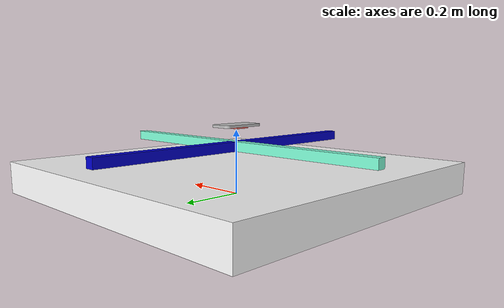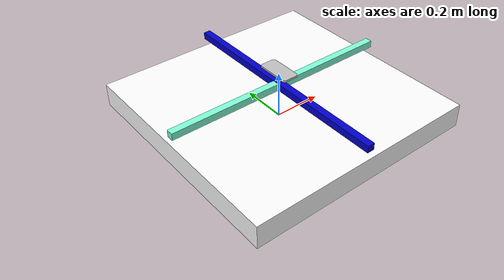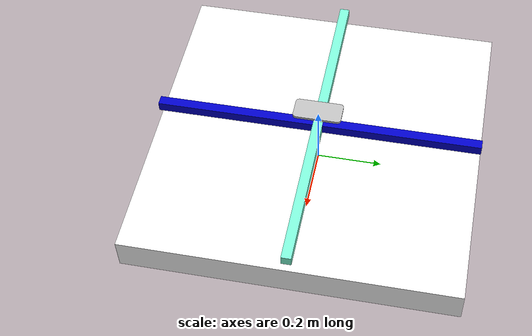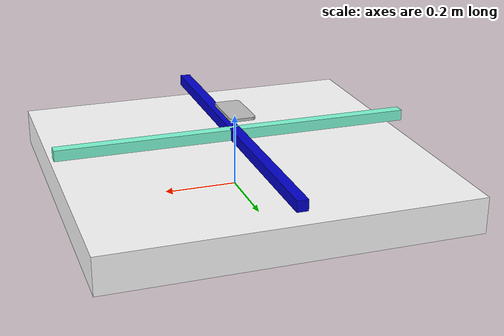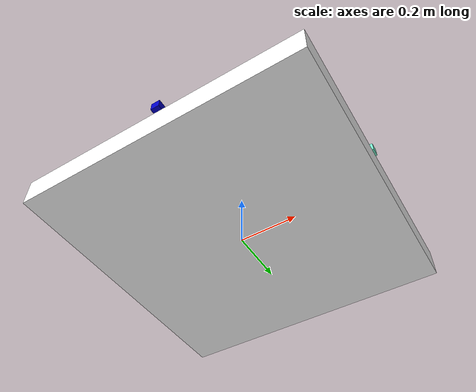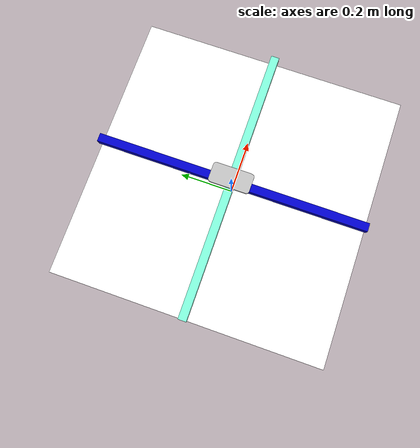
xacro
<?xml version="1.0"?>
<robot xmlns:xacro="http://www.ros.org/wiki/xacro" name="machine_tool" >
    <xacro:include filename="$(find machine_tool_description)/urdf/xacro/common.gazebo.xacro" />

    <material name="Aquamarine1"><color rgba="0.5 1 0.85 1"/></material>
    <material name="white"><color rgba="1 1 1 1"/></material>
    <material name="MediumBlue"><color rgba="0 0 0.8 1"/></material>
    <material name="Tomato"><color rgba="1 0.4 0.36 1"/></material>
    <link name="world"/>

    <link name="base_table">
        <visual>
            <origin xyz="0 0 0" rpy="0 0 0" />
            <geometry>
                <box size="1.0 1.0 0.1" />
            </geometry>
            <material name="white"/>
        </visual>
        <collision>
            <origin xyz="0 0 0" rpy="0 0 0" />
            <geometry>
                <box size="1.0 1.0 0.1" />
            </geometry>
        </collision>
        <inertial>
            <origin xyz="0 0 0" rpy="0 0 0" />
            <mass value="100"/>
            <inertia
                ixx="8.5" ixy="0.0" ixz="0.0"
                iyy="8.5" iyz="0.0"
                izz="17"/>
        </inertial>
        <surface>
            <friction>
                <ode>
                <mu>100</mu>
                <mu2>100</mu2>
                </ode>
            </friction>
        </surface>
    </link>

    <joint name="fixed" type="fixed">
        <origin xyz="0 0 0.05" rpy="0 0 0" />
        <parent link="world"/>
        <child link="base_table"/>
    </joint>

    <link name="x_axle">
        <visual>
            <origin xyz="0 0 0" rpy="0 0 0" />
            <geometry>
                <box size="1.0 0.03 0.03" />
            </geometry>
            <material name="Aquamarine1"/>
        </visual>
        <collision>
            <origin xyz="0 0 0" rpy="0 0 0" />
            <geometry>
                <box size="1.0 0.03 0.03" />
            </geometry>
        </collision>
        <inertial>
            <origin xyz="0 0 0" rpy="0 0 0" />
            <mass value="10"/>
            <inertia
                ixx="0.02" ixy="0.0" ixz="0.0"
                iyy="0.85" iyz="0.0"
                izz="0.85"/>
        </inertial>
        <surface>
            <friction>
                <ode>
                <mu>100</mu>
                <mu2>100</mu2>
                </ode>
            </friction>
        </surface>
    </link>

    <joint name="x_joint" type="prismatic">
       <origin xyz="0 0 0.1" rpy="0 0 0"></origin>
        <parent link="base_table" />
        <child link="x_axle"/>
        <axis xyz="1 0 0" />
        <limit effort="30" velocity="100.0" lower="-0.5" upper="0.5" />
    </joint>

    <link name="y_axle">
        <visual>
            <origin xyz="0 0 0" rpy="0 0 0" />
            <geometry>
                <box size="0.03 1.0 0.03" />
            </geometry>
            <material name="MediumBlue"/>
        </visual>
        <collision>
            <origin xyz="0 0 0" rpy="0 0 0" />
            <geometry>
                <box size="0.03 1.0 0.03" />
            </geometry>
        </collision>
        <inertial>
            <origin xyz="0 0 0" rpy="0 0 0" />
            <mass value="10"/>
            <inertia
                ixx="0.85" ixy="0.0" ixz="0.0"
                iyy="0.02" iyz="0.0"
                izz="0.85"/>
        </inertial>
        <surface>
            <friction>
                <ode>
                <mu>100</mu>
                <mu2>100</mu2>
                </ode>
            </friction>
        </surface>
    </link>

    <joint name="y_joint" type="prismatic">
       <origin xyz="0 0 0" rpy="0 0 0"></origin>
        <parent link="x_axle" />
        <child link="y_axle"/>
        <axis xyz="0 1 0" />
        <limit effort="30" velocity="100.0" lower="-0.5" upper="0.5" />
    </joint>

    <link name="plate">
        <visual>
            <origin xyz="0 0 0" rpy="0 0 0" />
            <geometry>
                <box size="0.05 0.05 0.01" />
            </geometry>
            <material name="Tomato"/>
        </visual>
        <collision>
            <origin xyz="0 0 0" rpy="0 0 0" />
            <geometry>
                <box size="0.2 0.2 0.05" />
            </geometry>
        </collision>
        <inertial>
            <origin xyz="0 0 0" rpy="0 0 0" />
            <mass value="1"/>
            <inertia
                ixx="0.01" ixy="0.0" ixz="0.0"
                iyy="0.01" iyz="0.0"
                izz="0.01"/>
        </inertial>
        <surface>
            <friction>
                <ode>
                <mu>100</mu>
                <mu2>100</mu2>
                </ode>
            </friction>
        </surface>
    </link>

    <joint name="r_joint" type="revolute">
        <origin xyz="0 0 0.06" rpy="0 0 0"></origin>
        <parent link="y_axle" />
        <child link="plate"/>
        <axis xyz="0 0 1" />
        <limit effort="30" velocity="100.0" lower="-6.28" upper="6.28" />
    </joint>

    <link name="iphone">
      <visual>
        <geometry>
          <mesh filename="package://machine_tool_description/meshes/iphone/test_model.STL" scale = "0.001 0.001 0.001" />
        </geometry>
        <material name="LightGrey">
          <color rgba="0.75294 0.75294 0.75294 1" />
        </material>
      </visual>
      <collision>
        <geometry>
            <box size="0.1 0.1 0.05" />
        </geometry>
      </collision>
      <inertial>
        <mass value="0.034" />
        <origin xyz="0.0 0.0 0.0" />
        <inertia ixx = "0.0022573" ixy = "0.000000" ixz = "0.000000"
                iyx = "0.000000" iyy = "0.0038711" iyz = "0.0003245"
                izx = "0.000000" izy = "0.0003245" izz = "0.0023745" />
      </inertial>
    </link>

    <joint name="plate_joine" type="fixed">
        <origin xyz="-0.0358 0.07353 0" rpy="1.5707963 0 0"></origin>
        <parent link="plate" />
        <child link="iphone"/>
        <axis xyz="0 0 1" />
    </joint>

    <transmission name="x_joint_trans">
      <type>transmission_interface/SimpleTransmission</type>
      <joint name="x_joint">
      <hardwareInterface>hardware_interface/VelocityJointInterface</hardwareInterface>
      </joint>
      <actuator name="x_joint_motor">
      <hardwareInterface>hardware_interface/VelocityJointInterface</hardwareInterface>
        <mechanicalReduction>1</mechanicalReduction>
      </actuator>
    </transmission>

    <transmission name="y_joint_trans">
      <type>transmission_interface/SimpleTransmission</type>
      <joint name="y_joint">
      <hardwareInterface>hardware_interface/VelocityJointInterface</hardwareInterface>
      </joint>
      <actuator name="y_joint_motor">
      <hardwareInterface>hardware_interface/VelocityJointInterface</hardwareInterface>
        <mechanicalReduction>1</mechanicalReduction>
      </actuator>
    </transmission>

    <transmission name="r_joint_trans">
      <type>transmission_interface/SimpleTransmission</type>
      <joint name="r_joint">
      <hardwareInterface>hardware_interface/VelocityJointInterface</hardwareInterface>
      </joint>
      <actuator name="r_joint_motor">
      <hardwareInterface>hardware_interface/VelocityJointInterface</hardwareInterface>
        <mechanicalReduction>1</mechanicalReduction>
      </actuator>
    </transmission>

</robot>
